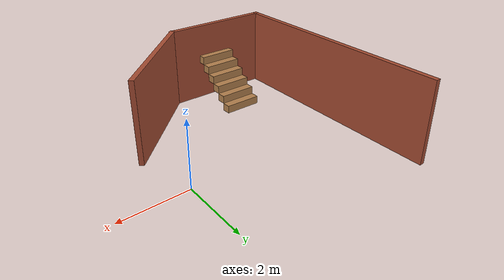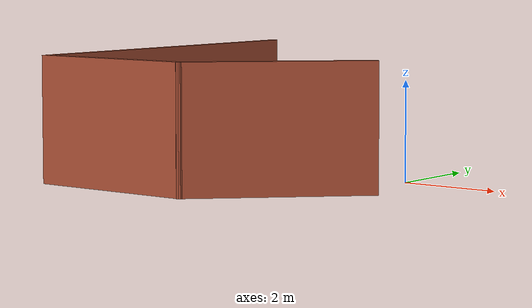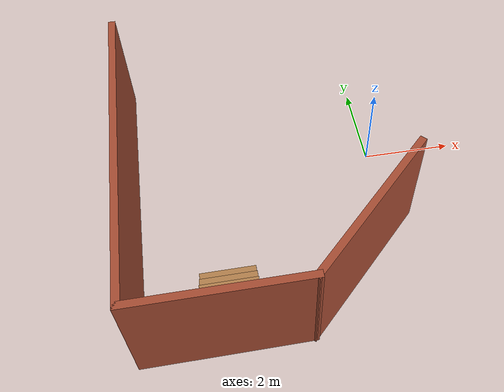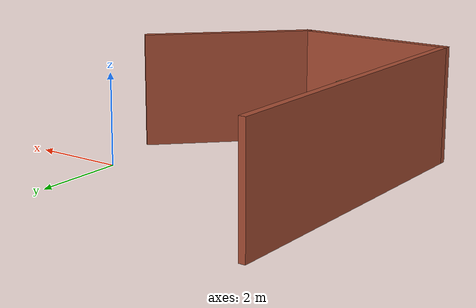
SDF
<?xml version='1.0'?>
<sdf version='1.7'>
  <model name='test_env1'>
    <pose>-2.47424 -0.75601 0 0 -0 0</pose>
    <link name='Stairs_3'>
      <visual name='Stairs_3_Visual_0'>
        <pose>-1.12791 -2.01407 0.124417 0 -0 0</pose>
        <geometry>
          <box>
            <size>1.18 0.271667 0.248833</size>
          </box>
        </geometry>
        <material>
          <script>
            <uri>file://media/materials/scripts/gazebo.material</uri>
            <name>Gazebo/Wood</name>
          </script>
          <ambient>1 1 1 1</ambient>
        </material>
        <meta>
          <layer>0</layer>
        </meta>
      </visual>
      <collision name='Stairs_3_Collision_0'>
        <geometry>
          <box>
            <size>1.18 0.271667 0.248833</size>
          </box>
        </geometry>
        <pose>-1.12791 -2.01407 0.124417 0 -0 0</pose>
      </collision>
      <visual name='Stairs_3_Visual_1'>
        <pose>-1.12791 -2.28574 0.37325 0 -0 0</pose>
        <geometry>
          <box>
            <size>1.18 0.271667 0.248833</size>
          </box>
        </geometry>
        <material>
          <script>
            <uri>file://media/materials/scripts/gazebo.material</uri>
            <name>Gazebo/Wood</name>
          </script>
          <ambient>1 1 1 1</ambient>
        </material>
        <meta>
          <layer>0</layer>
        </meta>
      </visual>
      <collision name='Stairs_3_Collision_1'>
        <geometry>
          <box>
            <size>1.18 0.271667 0.248833</size>
          </box>
        </geometry>
        <pose>-1.12791 -2.28574 0.37325 0 -0 0</pose>
      </collision>
      <visual name='Stairs_3_Visual_2'>
        <pose>-1.12791 -2.5574 0.622083 0 -0 0</pose>
        <geometry>
          <box>
            <size>1.18 0.271667 0.248833</size>
          </box>
        </geometry>
        <material>
          <script>
            <uri>file://media/materials/scripts/gazebo.material</uri>
            <name>Gazebo/Wood</name>
          </script>
          <ambient>1 1 1 1</ambient>
        </material>
        <meta>
          <layer>0</layer>
        </meta>
      </visual>
      <collision name='Stairs_3_Collision_2'>
        <geometry>
          <box>
            <size>1.18 0.271667 0.248833</size>
          </box>
        </geometry>
        <pose>-1.12791 -2.5574 0.622083 0 -0 0</pose>
      </collision>
      <visual name='Stairs_3_Visual_3'>
        <pose>-1.12791 -2.82907 0.870917 0 -0 0</pose>
        <geometry>
          <box>
            <size>1.18 0.271667 0.248833</size>
          </box>
        </geometry>
        <material>
          <script>
            <uri>file://media/materials/scripts/gazebo.material</uri>
            <name>Gazebo/Wood</name>
          </script>
          <ambient>1 1 1 1</ambient>
        </material>
        <meta>
          <layer>0</layer>
        </meta>
      </visual>
      <collision name='Stairs_3_Collision_3'>
        <geometry>
          <box>
            <size>1.18 0.271667 0.248833</size>
          </box>
        </geometry>
        <pose>-1.12791 -2.82907 0.870917 0 -0 0</pose>
      </collision>
      <visual name='Stairs_3_Visual_4'>
        <pose>-1.12791 -3.10074 1.11975 0 -0 0</pose>
        <geometry>
          <box>
            <size>1.18 0.271667 0.248833</size>
          </box>
        </geometry>
        <material>
          <script>
            <uri>file://media/materials/scripts/gazebo.material</uri>
            <name>Gazebo/Wood</name>
          </script>
          <ambient>1 1 1 1</ambient>
        </material>
        <meta>
          <layer>0</layer>
        </meta>
      </visual>
      <collision name='Stairs_3_Collision_4'>
        <geometry>
          <box>
            <size>1.18 0.271667 0.248833</size>
          </box>
        </geometry>
        <pose>-1.12791 -3.10074 1.11975 0 -0 0</pose>
      </collision>
      <visual name='Stairs_3_Visual_5'>
        <pose>-1.12791 -3.3724 1.36858 0 -0 0</pose>
        <geometry>
          <box>
            <size>1.18 0.271667 0.248833</size>
          </box>
        </geometry>
        <material>
          <script>
            <uri>file://media/materials/scripts/gazebo.material</uri>
            <name>Gazebo/Wood</name>
          </script>
          <ambient>1 1 1 1</ambient>
        </material>
        <meta>
          <layer>0</layer>
        </meta>
      </visual>
      <collision name='Stairs_3_Collision_5'>
        <geometry>
          <box>
            <size>1.18 0.271667 0.248833</size>
          </box>
        </geometry>
        <pose>-1.12791 -3.3724 1.36858 0 -0 0</pose>
      </collision>
    </link>
    <link name='Wall_6'>
      <collision name='Wall_6_Collision'>
        <geometry>
          <box>
            <size>3.5 0.15 2.5</size>
          </box>
        </geometry>
        <pose>0 0 1.25 0 -0 0</pose>
      </collision>
      <visual name='Wall_6_Visual'>
        <pose>0 0 1.25 0 -0 0</pose>
        <geometry>
          <box>
            <size>3.5 0.15 2.5</size>
          </box>
        </geometry>
        <material>
          <script>
            <uri>file://media/materials/scripts/gazebo.material</uri>
            <name>Gazebo/Bricks</name>
          </script>
          <ambient>1 1 1 1</ambient>
        </material>
        <meta>
          <layer>0</layer>
        </meta>
      </visual>
      <pose>-1.28832 -3.53447 0 0 -0 0</pose>
    </link>
    <link name='Wall_7'>
      <collision name='Wall_7_Collision'>
        <geometry>
          <box>
            <size>3.75 0.15 2.5</size>
          </box>
        </geometry>
        <pose>0 0 1.25 0 -0 0</pose>
      </collision>
      <visual name='Wall_7_Visual'>
        <pose>0 0 1.25 0 -0 0</pose>
        <geometry>
          <box>
            <size>3.75 0.15 2.5</size>
          </box>
        </geometry>
        <material>
          <script>
            <uri>file://media/materials/scripts/gazebo.material</uri>
            <name>Gazebo/Bricks</name>
          </script>
          <ambient>1 1 1 1</ambient>
        </material>
        <meta>
          <layer>0</layer>
        </meta>
      </visual>
      <pose>1.65947 -2.26167 0 0 -0 0.785398</pose>
    </link>
    <link name='Wall_9'>
      <collision name='Wall_9_Collision'>
        <geometry>
          <box>
            <size>7.25 0.15 2.5</size>
          </box>
        </geometry>
        <pose>0 0 1.25 0 -0 0</pose>
      </collision>
      <visual name='Wall_9_Visual'>
        <pose>0 0 1.25 0 -0 0</pose>
        <geometry>
          <box>
            <size>7.25 0.15 2.5</size>
          </box>
        </geometry>
        <material>
          <script>
            <uri>file://media/materials/scripts/gazebo.material</uri>
            <name>Gazebo/Bricks</name>
          </script>
          <ambient>1 1 1 1</ambient>
        </material>
        <meta>
          <layer>0</layer>
        </meta>
      </visual>
      <pose>-2.96333 0.015533 0 0 -0 1.5708</pose>
    </link>
    <static>1</static>
  </model>
</sdf>
